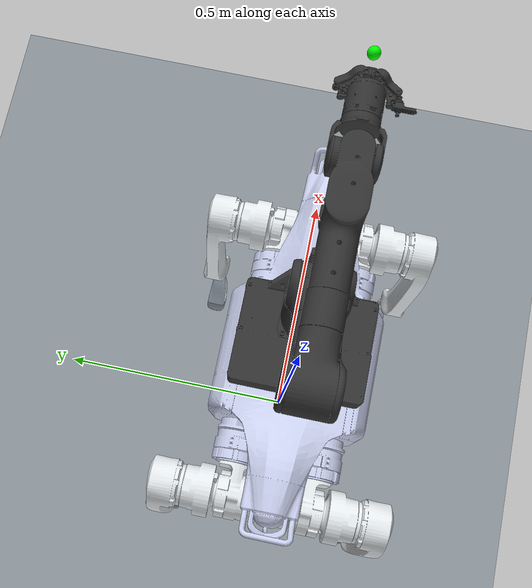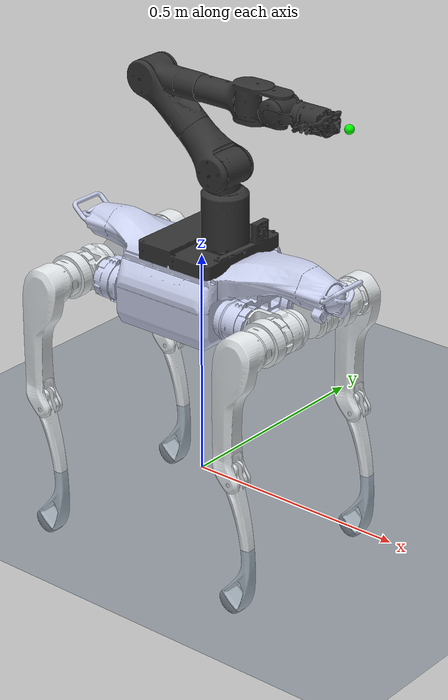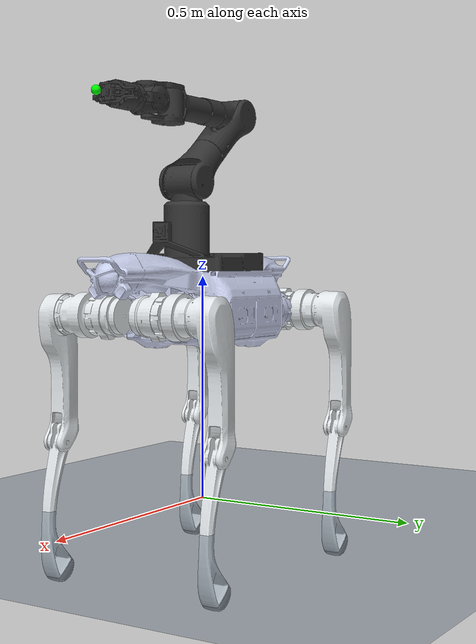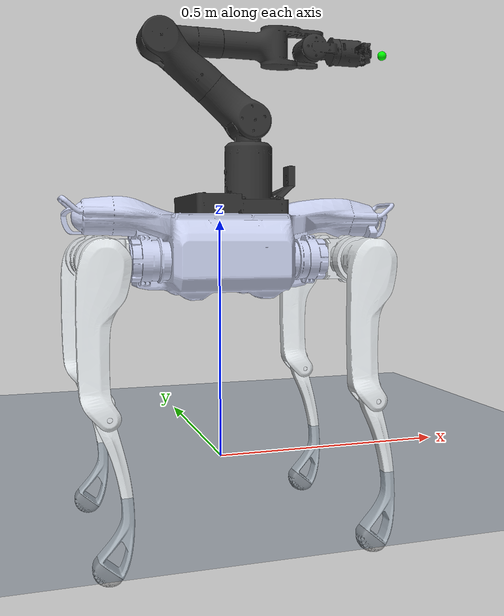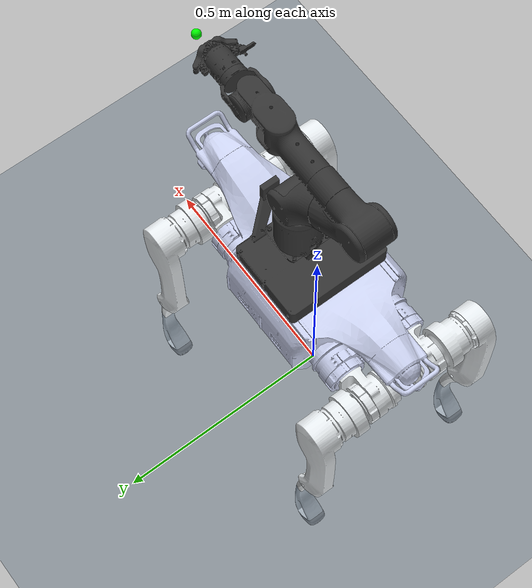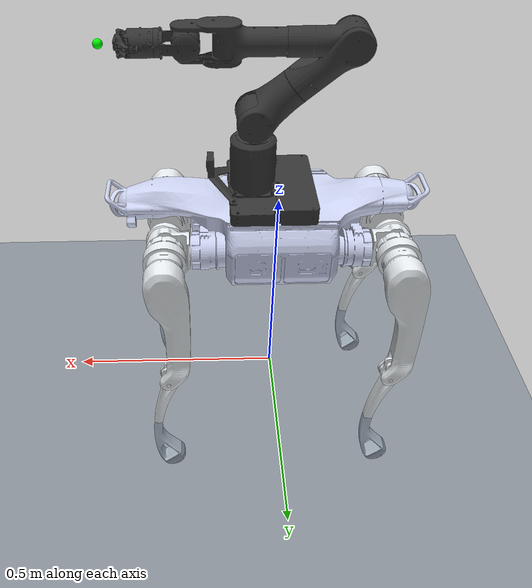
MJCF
<mujoco model="a2arm_v2 pos_force scene">
  <include file="a2arm_v2.xml"/>

  <statistic center="0 0 0.1" extent="0.9" meansize="0.05"/>

  <visual>
    <headlight diffuse="0.6 0.6 0.6" ambient="0.3 0.3 0.3" specular="0 0 0"/>
    <rgba haze="0.15 0.25 0.35 1"/>
    <global azimuth="-130" elevation="-20"/>
  </visual>

  <asset>
    <texture type="skybox" builtin="gradient" rgb1="0.3 0.5 0.7" rgb2="0 0 0" width="512" height="3072"/>
    <texture type="2d" name="groundplane" builtin="checker" mark="edge" rgb1="0.2 0.3 0.4" rgb2="0.1 0.2 0.3"
      markrgb="0.8 0.8 0.8" width="300" height="300"/>
    <material name="groundplane" texture="groundplane" texuniform="true" texrepeat="5 5" reflectance="0.2"/>
  </asset>

  <worldbody>
    <light pos="0 0 1.5" dir="0 0 -1" directional="true"/>
    <geom name="floor" size="0 0 0.05" type="plane" material="groundplane"/>
  </worldbody>

  <sensor>
    <contact name="FL_foot_contact" geom1="floor" geom2="FL" data="found" num="1" reduce="mindist"/>
    <contact name="FR_foot_contact" geom1="floor" geom2="FR" data="found" num="1" reduce="mindist"/>
    <contact name="RL_foot_contact" geom1="floor" geom2="RL" data="found" num="1" reduce="mindist"/>
    <contact name="RR_foot_contact" geom1="floor" geom2="RR" data="found" num="1" reduce="mindist"/>

    <!-- Foot contact force vectors (UniFP feet_contact_forces / feet_drag rewards). -->
    <contact name="FL_foot_force" geom1="floor" geom2="FL" data="force" num="1" reduce="mindist"/>
    <contact name="FR_foot_force" geom1="floor" geom2="FR" data="force" num="1" reduce="mindist"/>
    <contact name="RL_foot_force" geom1="floor" geom2="RL" data="force" num="1" reduce="mindist"/>
    <contact name="RR_foot_force" geom1="floor" geom2="RR" data="force" num="1" reduce="mindist"/>

    <contact name="base1_contact" geom1="floor" geom2="base1" data="found" num="1" reduce="mindist"/>
    <contact name="base2_contact" geom1="floor" geom2="base2" data="found" num="1" reduce="mindist"/>
    <contact name="base3_contact" geom1="floor" geom2="base3" data="found" num="1" reduce="mindist"/>

    <contact name="FL_thigh_contact" geom1="floor" geom2="fl_thigh_0" data="found" num="1" reduce="mindist"/>
    <contact name="FR_thigh_contact" geom1="floor" geom2="fr_thigh_0" data="found" num="1" reduce="mindist"/>
    <contact name="RL_thigh_contact" geom1="floor" geom2="rl_thigh_0" data="found" num="1" reduce="mindist"/>
    <contact name="RR_thigh_contact" geom1="floor" geom2="rr_thigh_0" data="found" num="1" reduce="mindist"/>

    <contact name="FL_calf_contact1" geom1="floor" geom2="fl_calf_0" data="found" num="1" reduce="mindist"/>
    <contact name="FR_calf_contact1" geom1="floor" geom2="fr_calf_0" data="found" num="1" reduce="mindist"/>
    <contact name="RL_calf_contact1" geom1="floor" geom2="rl_calf_0" data="found" num="1" reduce="mindist"/>
    <contact name="RR_calf_contact1" geom1="floor" geom2="rr_calf_0" data="found" num="1" reduce="mindist"/>

    <contact name="FL_calf_contact2" geom1="floor" geom2="fl_calf_1" data="found" num="1" reduce="mindist"/>
    <contact name="FR_calf_contact2" geom1="floor" geom2="fr_calf_1" data="found" num="1" reduce="mindist"/>
    <contact name="RL_calf_contact2" geom1="floor" geom2="rl_calf_1" data="found" num="1" reduce="mindist"/>
    <contact name="RR_calf_contact2" geom1="floor" geom2="rr_calf_1" data="found" num="1" reduce="mindist"/>
  </sensor>

  <keyframe>
    <key name="home"
      qpos="0 0 0.465 1 0 0 0  -0.1 0.75 -1.5  0.1 0.75 -1.5  -0.1 1.0 -1.5  0.1 1.0 -1.5  0 -0.340 0 -0.622 0 0"
      ctrl="0 0 0 0 0 0 0 0 0 0 0 0 0 0 0 0 0 0"/>
  </keyframe>
</mujoco>

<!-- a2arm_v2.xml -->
<mujoco model="a2arm_v2">
  <compiler angle="radian" meshdir="meshes" autolimits="true"/>
  <option gravity="0 0 -9.81"/>

  <default>
    <default class="hip_joint">
      <joint damping="0.2" armature="0.03" frictionloss="1.0"/>
    </default>
    <default class="thigh_joint">
      <joint damping="0.2" armature="0.03" frictionloss="1.0"/>
    </default>
    <default class="calf_joint">
      <joint damping="1.0" armature="0.03" frictionloss="3.0"/>
    </default>
    <default class="collision">
      <geom group="3" priority="1" condim="6"/>
    </default>
    <default class="foot">
      <geom group="3" priority="1" condim="6"/>
    </default>
    <default class="obj_visual">
      <geom group="2" type="mesh" contype="0" conaffinity="0"/>
    </default>
    <default class="obj_collision">
      <geom group="3" contype="1" conaffinity="1"/>
    </default>
    <!-- P7v3 arm joints: light damping, modest armature (6-DOF articulated). -->
    <default class="p7_arm">
      <joint axis="0 0 1" armature="0.01" damping="0.5" frictionloss="1"/>
    </default>
  </default>

  <asset>
    <material name="metal" rgba=".9 .95 .95 1"/>
    <material name="black" rgba="0 0 0 1"/>
    <material name="white" rgba="1 1 1 1"/>
    <material name="gray" rgba="0.671705 0.692426 0.774270 1"/>
    <material name="Paint_Matte_Black" specular="0.5" shininess="0.5" rgba="0.00111266 0.00111266 0.00111266 1.0"/>
    <material name="dark_gray" rgba="0.2 0.2 0.2 1"/>
    <material name="light_gray" rgba="0.6 0.6 0.6 1"/>

    <!-- A2 leg meshes (same STL files as a2_arm, flat under meshes/). -->
    <mesh name="base_link" file="base_link.STL"/>
    <mesh name="left_front_Link1" file="left_front_Link1.STL"/>
    <mesh name="left_front_Link2" file="left_front_Link2.STL"/>
    <mesh name="left_front_Link3" file="left_front_Link3.STL"/>
    <mesh name="left_front_Link4" file="left_front_Link4.STL"/>
    <mesh name="left_hind_Link1" file="left_hind_Link1.STL"/>
    <mesh name="left_hind_Link2" file="left_hind_Link2.STL"/>
    <mesh name="left_hind_Link3" file="left_hind_Link3.STL"/>
    <mesh name="left_hind_Link4" file="left_hind_Link4.STL"/>
    <mesh name="right_front_Link1" file="right_front_Link1.STL"/>
    <mesh name="right_front_Link2" file="right_front_Link2.STL"/>
    <mesh name="right_front_Link3" file="right_front_Link3.STL"/>
    <mesh name="right_front_Link4" file="right_front_Link4.STL"/>
    <mesh name="right_hind_Link1" file="right_hind_Link1.STL"/>
    <mesh name="right_hind_Link2" file="right_hind_Link2.STL"/>
    <mesh name="right_hind_Link3" file="right_hind_Link3.STL"/>
    <mesh name="right_hind_Link4" file="right_hind_Link4.STL"/>

    <!-- P7v3 arm meshes. -->
    <mesh name="arm_base" file="p7_v3/base_link.STL"/>
    <mesh name="link1" file="p7_v3/link1.STL"/>
    <mesh name="link2" file="p7_v3/link2.STL"/>
    <mesh name="link3" file="p7_v3/link3.STL"/>
    <mesh name="link4" file="p7_v3/link4.STL"/>
    <mesh name="link5" file="p7_v3/link5.STL"/>
    <mesh name="link6" file="p7_v3/link6.STL"/>
    <mesh name="link7" file="p7_v3/link7.STL"/>
    <mesh name="adapter_plate" file="adapter_plate.STL"/>

    <!-- UMI gripper v3 meshes (welded, no joints). -->
    <mesh name="umi_base" file="umi_gripper_v3/base_link.STL"/>
    <mesh name="umi_claw" file="umi_gripper_v3/claw.STL"/>
    <mesh name="umi_l11" file="umi_gripper_v3/L11.STL"/>
    <mesh name="umi_l12" file="umi_gripper_v3/L12.STL"/>
    <mesh name="umi_l21" file="umi_gripper_v3/L21.STL"/>
    <mesh name="umi_l22" file="umi_gripper_v3/L22.STL"/>
    <mesh name="umi_l23" file="umi_gripper_v3/L23.STL"/>
    <mesh name="umi_l31" file="umi_gripper_v3/L31.STL"/>
    <mesh name="umi_l32" file="umi_gripper_v3/L32.STL"/>
    <mesh name="umi_l41" file="umi_gripper_v3/L41.STL"/>
    <mesh name="umi_l42" file="umi_gripper_v3/L42.STL"/>
    <mesh name="umi_l51" file="umi_gripper_v3/L51.STL"/>
    <mesh name="umi_l52" file="umi_gripper_v3/L52.STL"/>
    <mesh name="umi_l53" file="umi_gripper_v3/L53.STL"/>
    <mesh name="umi_l61" file="umi_gripper_v3/L61.STL"/>
    <mesh name="umi_l62" file="umi_gripper_v3/L62.STL"/>
  </asset>

  <worldbody>
    <body name="base_link" pos="0 0 0.42">
      <inertial pos="0.00698259 -0.000712858 0.0128895" quat="-0.00152907 0.699583 -0.00252986 0.714546" mass="19.651" diaginertia="0.472398 0.407723 0.141627"/>
      <joint name="floating_base_joint" type="free" limited="false" actuatorfrclimited="false"/>
      <site name="imu" pos="-0.0 0 0.0"/>
      <geom type="mesh" contype="0" conaffinity="0" group="1" density="0" rgba="0.792157 0.819608 0.933333 1" mesh="base_link"/>
      <geom name="base1" class="collision" size="0.12 0.14 0.085" pos="0 0 0.007" type="box" rgba="0.792157 0.819608 0.933333 1"/>
      <geom name="base2" class="collision" size="0.04 0.025 0.01" pos="0.25 0 0.119" type="box" rgba="0.792157 0.819608 0.933333 1"/>
      <geom name="base3" class="collision" size="0.025 0.015 0.008" pos="-0.22 0 0.119" quat="0.999888 0 -0.0149994 0" type="box" rgba="0.792157 0.819608 0.933333 1"/>
      <geom class="collision" size="0.03 0.05 0.005" pos="0.365 0 0.1" quat="0.939373 0 -0.342898 0" type="box" rgba="0.792157 0.819608 0.933333 1"/>
      <geom class="collision" size="0.0225 0.05 0.005" pos="-0.31 0 0.112" quat="0.939373 0 0.342898 0" type="box" rgba="0.792157 0.819608 0.933333 1"/>

      <!-- ===== FL leg ===== -->
      <body name="FL_hip" pos="0.25944 0.075113 0">
        <inertial pos="-0.002408 -0.01622 0.000239" quat="0.66751 0.421649 0.565191 0.239168" mass="1.62" diaginertia="0.0016644 0.00161602 0.00145995"/>
        <joint name="FL_hip_joint" pos="0 0 0" axis="1 0 0" range="-1.01 1.01" actuatorfrcrange="-120 120" class="hip_joint"/>
        <geom type="mesh" contype="0" conaffinity="0" group="1" density="0" rgba="0.898039 0.917647 0.929412 1" mesh="left_front_Link1"/>
        <body name="FL_thigh" pos="0 0.12779 0">
          <inertial pos="-0.003268 -0.03111 -0.053896" quat="0.993045 0.11348 0.0231928 0.0211279" mass="3.079" diaginertia="0.0293395 0.0280448 0.00383794"/>
          <joint name="FL_thigh_joint" pos="0 0 0" axis="0 1 0" range="-2.34 3.15" actuatorfrcrange="-120 120" class="thigh_joint"/>
          <geom type="mesh" contype="0" conaffinity="0" group="1" density="0" rgba="0.898039 0.917647 0.929412 1" mesh="left_front_Link2"/>
          <geom class="collision" size="0.048 0.06" pos="0 -0.04 0" quat="0.707035 0.707179 0 0" type="cylinder" rgba="0.898039 0.917647 0.929412 1"/>
          <geom name="fl_thigh_0" class="collision" size="0.0275 0.018 0.085" pos="-0.025 0 -0.09" quat="0.999988 0 0.00499998 0" type="box" rgba="0.898039 0.917647 0.929412 1"/>
          <geom class="collision" size="0.0085 0.025 0.025" pos="-0.022 0 -0.27" quat="0.930508 0 -0.366273 0" type="box" rgba="0.898039 0.917647 0.929412 1"/>
          <body name="FL_calf" pos="0 0 -0.275">
            <inertial pos="0.0102138 -1.99312e-05 -0.136496" quat="0.706884 -0.0119077 -0.0120568 0.707127" mass="0.407" diaginertia="0.00511119 0.00502314 0.000177746"/>
            <joint name="FL_calf_joint" pos="0 0 0" axis="0 1 0" range="-2.77 -0.54" actuatorfrcrange="-180 180" class="calf_joint"/>
            <geom type="mesh" contype="0" conaffinity="0" group="1" density="0" rgba="0.898039 0.917647 0.929412 1" mesh="left_front_Link3"/>
            <geom name="fl_calf_0" class="collision" size="0.012 0.015 0.05" pos="0.018 0 -0.08" quat="0.992809 0 -0.119712 0" type="box" rgba="0.898039 0.917647 0.929412 1"/>
            <geom name="fl_calf_1" class="collision" size="0.011 0.015 0.04" pos="0.033 0 -0.17" quat="0.999888 0 -0.0149994 0" type="box" rgba="0.898039 0.917647 0.929412 1"/>
            <geom class="collision" size="0.01 0.018 0.03" pos="0.029 0 -0.236" quat="0.995004 0 0.0998334 0" type="box" rgba="0.898039 0.917647 0.929412 1"/>
            <geom class="collision" size="0.005 0.018 0.03" pos="0.008 0 -0.23" quat="0.942755 0 0.333487 0" type="box" rgba="0.898039 0.917647 0.929412 1"/>
            <geom pos="0 0 -0.275" quat="1 0 0 0" type="mesh" contype="0" conaffinity="0" group="1" density="0" rgba="0.698039 0.698039 0.698039 1" mesh="left_front_Link4"/>
            <geom name="FL" size="0.032" pos="0 0 -0.275" rgba="0.698039 0.698039 0.698039 1" class="foot"/>
            <site name="FL" pos="0 0 -0.275" size="0.02" rgba="0 1 0 1" group="3"/>
          </body>
        </body>
      </body>

      <!-- ===== FR leg ===== -->
      <body name="FR_hip" pos="0.25944 -0.075113 0">
        <inertial pos="-0.002465 0.01622 0.000318" quat="0.244263 0.553086 0.449878 0.657299" mass="1.62" diaginertia="0.0016672 0.00160755 0.00146457"/>
        <joint name="FR_hip_joint" pos="0 0 0" axis="1 0 0" range="-1.01 1.01" actuatorfrcrange="-120 120" class="hip_joint"/>
        <geom type="mesh" contype="0" conaffinity="0" group="1" density="0" rgba="0.898039 0.917647 0.929412 1" mesh="right_front_Link1"/>
        <body name="FR_thigh" pos="0 -0.12779 0">
          <inertial pos="-0.003256 0.031125 -0.053921" quat="0.993054 -0.113587 0.0234158 -0.0198545" mass="3.077" diaginertia="0.029323 0.028038 0.00383842"/>
          <joint name="FR_thigh_joint" pos="0 0 0" axis="0 1 0" range="-2.34 3.15" actuatorfrcrange="-120 120" class="thigh_joint"/>
          <geom type="mesh" contype="0" conaffinity="0" group="1" density="0" rgba="0.898039 0.917647 0.929412 1" mesh="right_front_Link2"/>
          <geom class="collision" size="0.048 0.06" pos="0 0.04 0" quat="0.707035 0.707179 0 0" type="cylinder" rgba="0.898039 0.917647 0.929412 1"/>
          <geom name="fr_thigh_0" class="collision" size="0.0275 0.018 0.085" pos="-0.025 0 -0.09" quat="0.999988 0 0.00499998 0" type="box" rgba="0.898039 0.917647 0.929412 1"/>
          <geom class="collision" size="0.0085 0.025 0.025" pos="-0.022 0 -0.27" quat="0.930508 0 -0.366273 0" type="box" rgba="0.898039 0.917647 0.929412 1"/>
          <body name="FR_calf" pos="0 0 -0.275">
            <inertial pos="0.0102138 1.55479e-05 -0.136496" quat="0.707151 -0.0120743 -0.0118903 0.706859" mass="0.407" diaginertia="0.00511119 0.00502314 0.000177746"/>
            <joint name="FR_calf_joint" pos="0 0 0" axis="0 1 0" range="-2.77 -0.54" actuatorfrcrange="-180 180" class="calf_joint"/>
            <geom type="mesh" contype="0" conaffinity="0" group="1" density="0" rgba="0.898039 0.917647 0.929412 1" mesh="right_front_Link3"/>
            <geom name="fr_calf_0" class="collision" size="0.012 0.015 0.05" pos="0.018 0 -0.08" quat="0.992809 0 -0.119712 0" type="box" rgba="0.898039 0.917647 0.929412 1"/>
            <geom name="fr_calf_1" class="collision" size="0.011 0.015 0.04" pos="0.033 0 -0.17" quat="0.999888 0 -0.0149994 0" type="box" rgba="0.898039 0.917647 0.929412 1"/>
            <geom class="collision" size="0.01 0.018 0.03" pos="0.029 0 -0.236" quat="0.995004 0 0.0998334 0" type="box" rgba="0.898039 0.917647 0.929412 1"/>
            <geom class="collision" size="0.005 0.018 0.03" pos="0.008 0 -0.23" quat="0.942755 0 0.333487 0" type="box" rgba="0.898039 0.917647 0.929412 1"/>
            <geom pos="0 0 -0.275" quat="1 0 0 0" type="mesh" contype="0" conaffinity="0" group="1" density="0" rgba="0.698039 0.698039 0.698039 1" mesh="right_front_Link4"/>
            <geom name="FR" size="0.032" pos="0 0 -0.275" rgba="0.698039 0.698039 0.698039 1" class="foot"/>
            <site name="FR" pos="0 0 -0.275" size="0.02" rgba="0 1 0 1" group="3"/>
          </body>
        </body>
      </body>

      <!-- ===== RL leg ===== -->
      <body name="RL_hip" pos="-0.25944 0.075113 0">
        <inertial pos="0.00327 -0.01622 -9.7e-05" quat="0.358494 0.383537 0.580824 0.622113" mass="1.62" diaginertia="0.00167848 0.00163116 0.00141504"/>
        <joint name="RL_hip_joint" pos="0 0 0" axis="1 0 0" range="-1.01 1.01" actuatorfrcrange="-120 120" class="hip_joint"/>
        <geom type="mesh" contype="0" conaffinity="0" group="1" density="0" rgba="0.898039 0.917647 0.929412 1" mesh="left_hind_Link1"/>
        <body name="RL_thigh" pos="0 0.12779 0">
          <inertial pos="-0.003268 -0.03111 -0.053896" quat="0.993045 0.11348 0.0231928 0.0211279" mass="3.079" diaginertia="0.0293395 0.0280448 0.00383794"/>
          <joint name="RL_thigh_joint" pos="0 0 0" axis="0 1 0" range="-1.56 3.94" actuatorfrcrange="-120 120" class="thigh_joint"/>
          <geom type="mesh" contype="0" conaffinity="0" group="1" density="0" rgba="0.898039 0.917647 0.929412 1" mesh="left_hind_Link2"/>
          <geom class="collision" size="0.048 0.06" pos="0 -0.04 0" quat="0.707035 0.707179 0 0" type="cylinder" rgba="0.898039 0.917647 0.929412 1"/>
          <geom name="rl_thigh_0" class="collision" size="0.0275 0.018 0.085" pos="-0.025 0 -0.09" quat="0.999988 0 0.00499998 0" type="box" rgba="0.898039 0.917647 0.929412 1"/>
          <geom class="collision" size="0.0085 0.025 0.025" pos="-0.022 0 -0.27" quat="0.930508 0 -0.366273 0" type="box" rgba="0.898039 0.917647 0.929412 1"/>
          <body name="RL_calf" pos="0 0 -0.275">
            <inertial pos="0.0102138 -1.99312e-05 -0.136496" quat="0.706884 -0.0119077 -0.0120568 0.707127" mass="0.407" diaginertia="0.00511119 0.00502314 0.000177746"/>
            <joint name="RL_calf_joint" pos="0 0 0" axis="0 1 0" range="-2.77 -0.54" actuatorfrcrange="-180 180" class="calf_joint"/>
            <geom type="mesh" contype="0" conaffinity="0" group="1" density="0" rgba="0.898039 0.917647 0.929412 1" mesh="left_hind_Link3"/>
            <geom name="rl_calf_0" class="collision" size="0.012 0.015 0.05" pos="0.018 0 -0.08" quat="0.992809 0 -0.119712 0" type="box" rgba="0.898039 0.917647 0.929412 1"/>
            <geom name="rl_calf_1" class="collision" size="0.011 0.015 0.04" pos="0.033 0 -0.17" quat="0.999888 0 -0.0149994 0" type="box" rgba="0.898039 0.917647 0.929412 1"/>
            <geom class="collision" size="0.01 0.018 0.03" pos="0.029 0 -0.236" quat="0.995004 0 0.0998334 0" type="box" rgba="0.898039 0.917647 0.929412 1"/>
            <geom class="collision" size="0.005 0.018 0.03" pos="0.008 0 -0.23" quat="0.942755 0 0.333487 0" type="box" rgba="0.898039 0.917647 0.929412 1"/>
            <geom pos="0 0 -0.275" quat="1 0 0 0" type="mesh" contype="0" conaffinity="0" group="1" density="0" rgba="0.698039 0.698039 0.698039 1" mesh="left_hind_Link4"/>
            <geom name="RL" size="0.032" pos="0 0 -0.275" rgba="0.698039 0.698039 0.698039 1" class="foot"/>
            <site name="RL" pos="0 0 -0.275" size="0.02" rgba="0 1 0 1" group="3"/>
          </body>
        </body>
      </body>

      <!-- ===== RR leg ===== -->
      <body name="RR_hip" pos="-0.25944 -0.075113 0">
        <inertial pos="0.00327 0.01622 -3.7e-05" quat="0.616206 0.585144 0.36648 0.378931" mass="1.62" diaginertia="0.00167769 0.00163476 0.00141225"/>
        <joint name="RR_hip_joint" pos="0 0 0" axis="1 0 0" range="-1.01 1.01" actuatorfrcrange="-120 120" class="hip_joint"/>
        <geom type="mesh" contype="0" conaffinity="0" group="1" density="0" rgba="0.898039 0.917647 0.929412 1" mesh="right_hind_Link1"/>
        <body name="RR_thigh" pos="0 -0.12779 0">
          <inertial pos="-0.003256 0.031125 -0.053921" quat="0.993054 -0.113587 0.0234158 -0.0198545" mass="3.077" diaginertia="0.029323 0.028038 0.00383842"/>
          <joint name="RR_thigh_joint" pos="0 0 0" axis="0 1 0" range="-1.56 3.94" actuatorfrcrange="-120 120" class="thigh_joint"/>
          <geom type="mesh" contype="0" conaffinity="0" group="1" density="0" rgba="0.898039 0.917647 0.929412 1" mesh="right_hind_Link2"/>
          <geom class="collision" size="0.048 0.06" pos="0 0.04 0" quat="0.707035 0.707179 0 0" type="cylinder" rgba="0.898039 0.917647 0.929412 1"/>
          <geom name="rr_thigh_0" class="collision" size="0.0275 0.018 0.085" pos="-0.025 0 -0.09" quat="0.999988 0 0.00499998 0" type="box" rgba="0.898039 0.917647 0.929412 1"/>
          <geom class="collision" size="0.0085 0.025 0.025" pos="-0.022 0 -0.27" quat="0.930508 0 -0.366273 0" type="box" rgba="0.898039 0.917647 0.929412 1"/>
          <body name="RR_calf" pos="0 0 -0.275">
            <inertial pos="0.0102138 1.55479e-05 -0.136496" quat="0.707151 -0.0120743 -0.0118903 0.706859" mass="0.407" diaginertia="0.00511119 0.00502314 0.000177746"/>
            <joint name="RR_calf_joint" pos="0 0 0" axis="0 1 0" range="-2.77 -0.54" actuatorfrcrange="-180 180" class="calf_joint"/>
            <geom type="mesh" contype="0" conaffinity="0" group="1" density="0" rgba="0.898039 0.917647 0.929412 1" mesh="right_hind_Link3"/>
            <geom name="rr_calf_0" class="collision" size="0.012 0.015 0.05" pos="0.018 0 -0.08" quat="0.992809 0 -0.119712 0" type="box" rgba="0.898039 0.917647 0.929412 1"/>
            <geom name="rr_calf_1" class="collision" size="0.011 0.015 0.04" pos="0.033 0 -0.17" quat="0.999888 0 -0.0149994 0" type="box" rgba="0.898039 0.917647 0.929412 1"/>
            <geom class="collision" size="0.01 0.018 0.03" pos="0.029 0 -0.236" quat="0.995004 0 0.0998334 0" type="box" rgba="0.898039 0.917647 0.929412 1"/>
            <geom class="collision" size="0.005 0.018 0.03" pos="0.008 0 -0.23" quat="0.942755 0 0.333487 0" type="box" rgba="0.898039 0.917647 0.929412 1"/>
            <geom pos="0 0 -0.275" quat="1 0 0 0" type="mesh" contype="0" conaffinity="0" group="1" density="0" rgba="0.698039 0.698039 0.698039 1" mesh="right_hind_Link4"/>
            <geom name="RR" size="0.032" pos="0 0 -0.275" rgba="0.698039 0.698039 0.698039 1" class="foot"/>
            <site name="RR" pos="0 0 -0.275" size="0.02" rgba="0 1 0 1" group="3"/>
          </body>
        </body>
      </body>

      <!-- ===== P7v3 arm (joint1-6 actuated; joint7/UMI welded) ===== -->
      <body name="arm_base_link" pos="0.0625 0 0.1209" childclass="p7_arm">
        <inertial pos="0 0 0.08" mass="0.5" diaginertia="0.001 0.001 0.001"/>
        <site name="armbasepoint" pos="0 0 0" euler="0 0 0" size="0.01" type="sphere" rgba="1 0 0 1"/>
        <geom type="mesh" mesh="adapter_plate" class="obj_visual" material="dark_gray"/>
        <geom type="mesh" mesh="arm_base" class="obj_visual" material="dark_gray"/>
        <body name="link1" pos="0 0 0.16452">
          <inertial pos="0 0 0.05" mass="0.8" diaginertia="0.002 0.002 0.001"/>
          <joint name="joint1" axis="0 0 1" range="-2.967 2.967" actuatorfrcrange="-30 30"/>
          <geom type="mesh" mesh="link1" class="obj_visual" material="dark_gray"/>
          <body name="link2" quat="-0.298838 -0.298832 -0.640859 0.640855">
            <inertial pos="0 -0.12 0" mass="1.2" diaginertia="0.003 0.003 0.001"/>
            <joint name="joint2" axis="0 0 1" range="-2.583 0.838" actuatorfrcrange="-30 30"/>
            <geom type="mesh" mesh="link2" class="obj_visual" material="dark_gray"/>
            <body name="link3" pos="0 -0.249 0" quat="0.707105 0.707108 0 0">
              <inertial pos="0 0 0" mass="0.6" diaginertia="0.001 0.001 0.001"/>
              <joint name="joint3" axis="0 0 1" range="-2.967 2.967" actuatorfrcrange="-30 30"/>
              <geom type="mesh" mesh="link3" class="obj_visual" material="dark_gray"/>
              <body name="link4" quat="0.664462 0.664464 0.241844 -0.241845">
                <inertial pos="0 -0.16 0" mass="1.0" diaginertia="0.002 0.002 0.001"/>
                <joint name="joint4" axis="0 0 1" range="-2.443 0.175" actuatorfrcrange="-30 30"/>
                <geom type="mesh" mesh="link4" class="obj_visual" material="dark_gray"/>
                <body name="link5" pos="0 -0.329 0" quat="0.499998 0.5 0.5 -0.500002">
                  <inertial pos="0 0 0" mass="0.4" diaginertia="0.001 0.001 0.0005"/>
                  <joint name="joint5" axis="0 0 1" range="-2.967 2.967" actuatorfrcrange="-10 10"/>
                  <geom type="mesh" mesh="link5" class="obj_visual" material="dark_gray"/>
                  <body name="link6" quat="0.500073 0.500075 -0.499925 0.499927">
                    <inertial pos="0 0 0" mass="0.3" diaginertia="0.0005 0.0005 0.0003"/>
                    <joint name="joint6" axis="0 0 1" range="-0.785 0.785" actuatorfrcrange="-10 10"/>
                    <geom type="mesh" mesh="link6" class="obj_visual" material="dark_gray"/>
                    <!-- joint7 welded (fixed at 0): link7 is a rigid child of link6. -->
                    <body name="link7" quat="-2.59734e-06 2.59735e-06 -0.707108 0.707105">
                      <inertial pos="-0.03 0 0" mass="0.2" diaginertia="0.0003 0.0003 0.0002"/>
                      <geom type="mesh" mesh="link7" class="obj_visual" material="dark_gray"/>
                      <body name="tool" pos="-0.062 0 0" quat="-2.59734e-06 2.59735e-06 -0.707108 0.707105">
                        <inertial pos="0.05 0 0" mass="0.15" diaginertia="0.0002 0.0002 0.0001"/>
                        <!-- TCP: end_link carries the endpoint site (EE goal frame). -->
                        <body name="end_link" pos="0.10867 0 0">
                          <inertial pos="0 0 0" mass="0.001" diaginertia="1e-6 1e-6 1e-6"/>
                          <site name="endpoint" pos="0 0 0" euler="0 0 0" size="0.01" type="sphere" rgba="0 1 0 1"/>
                        </body>
                        <!-- UMI gripper v3 (welded, no joints; mass modeled for payload). -->
                        <body name="umi_base_link">
                          <inertial pos="0.03 0 0" mass="0.3" diaginertia="0.0005 0.0005 0.0003"/>
                          <geom type="mesh" mesh="umi_base" class="obj_visual" material="dark_gray"/>
                          <body name="umi_claw" pos="0.051 0 -6.849e-05" quat="0.499998 0.5 0.500002 0.5">
                            <inertial pos="0.02 0 0" mass="0.05" diaginertia="0.0001 0.0001 0.00005"/>
                            <geom type="mesh" mesh="umi_claw" class="obj_visual" material="dark_gray"/>
                            <body name="umi_l11" pos="-0.035 0 -0.014">
                              <geom type="mesh" mesh="umi_l11" class="obj_visual" material="dark_gray"/>
                              <body name="umi_l12" pos="-0.014 -0.007 0">
                                <geom type="mesh" mesh="umi_l12" class="obj_visual" material="dark_gray"/>
                              </body>
                            </body>
                            <body name="umi_l61" pos="0.035 0 -0.014">
                              <geom type="mesh" mesh="umi_l61" class="obj_visual" material="dark_gray"/>
                              <body name="umi_l62" pos="-0.014 0.007 0">
                                <geom type="mesh" mesh="umi_l62" class="obj_visual" material="dark_gray"/>
                              </body>
                            </body>
                          </body>
                          <body name="umi_l21" pos="0.0565 -0.017 0">
                            <geom type="mesh" mesh="umi_l21" class="obj_visual" material="dark_gray"/>
                            <body name="umi_l22" pos="0.013 0.027 0">
                              <geom type="mesh" mesh="umi_l22" class="obj_visual" material="dark_gray"/>
                              <body name="umi_l23" pos="-0.025 0.024 0">
                                <geom type="mesh" mesh="umi_l23" class="obj_visual" material="dark_gray"/>
                              </body>
                            </body>
                          </body>
                          <body name="umi_l31" pos="0.0615 -0.007 0">
                            <geom type="mesh" mesh="umi_l31" class="obj_visual" material="dark_gray"/>
                            <body name="umi_l32" pos="-0.012 0.051 0">
                              <geom type="mesh" mesh="umi_l32" class="obj_visual" material="dark_gray"/>
                            </body>
                          </body>
                          <body name="umi_l41" pos="0.0615 0.007 0">
                            <geom type="mesh" mesh="umi_l41" class="obj_visual" material="dark_gray"/>
                            <body name="umi_l42" pos="-0.012 -0.051 0">
                              <geom type="mesh" mesh="umi_l42" class="obj_visual" material="dark_gray"/>
                            </body>
                          </body>
                          <body name="umi_l51" pos="0.0565 0.017 0">
                            <geom type="mesh" mesh="umi_l51" class="obj_visual" material="dark_gray"/>
                            <body name="umi_l52" pos="0.013 -0.027 0">
                              <geom type="mesh" mesh="umi_l52" class="obj_visual" material="dark_gray"/>
                              <body name="umi_l53" pos="-0.025 -0.024 0">
                                <geom type="mesh" mesh="umi_l53" class="obj_visual" material="dark_gray"/>
                              </body>
                            </body>
                          </body>
                        </body>
                      </body>
                    </body>
                  </body>
                </body>
              </body>
            </body>
          </body>
        </body>
      </body>
    </body>
  </worldbody>

  <contact>
    <!-- P7v3 arm adjacent-link excludes. -->
    <exclude body1="arm_base_link" body2="link1"/>
    <exclude body1="link1" body2="link2"/>
    <exclude body1="link2" body2="link3"/>
    <exclude body1="link3" body2="link4"/>
    <exclude body1="link4" body2="link5"/>
    <exclude body1="link5" body2="link6"/>
    <exclude body1="link6" body2="link7"/>
    <exclude body1="link7" body2="tool"/>
    <exclude body1="tool" body2="end_link"/>
    <exclude body1="tool" body2="umi_base_link"/>
    <!-- Arm vs. near legs. -->
    <exclude body1="arm_base_link" body2="FL_hip"/>
    <exclude body1="arm_base_link" body2="FR_hip"/>
    <exclude body1="arm_base_link" body2="RL_hip"/>
    <exclude body1="arm_base_link" body2="RR_hip"/>
    <exclude body1="link1" body2="FL_hip"/>
    <exclude body1="link1" body2="FR_hip"/>
    <exclude body1="link1" body2="RL_hip"/>
    <exclude body1="link1" body2="RR_hip"/>
    <!-- UMI internal (welded linkage self-collision). -->
    <exclude body1="umi_base_link" body2="umi_claw"/>
    <exclude body1="umi_claw" body2="umi_l11"/>
    <exclude body1="umi_claw" body2="umi_l61"/>
    <exclude body1="umi_claw" body2="umi_l21"/>
    <exclude body1="umi_claw" body2="umi_l31"/>
    <exclude body1="umi_claw" body2="umi_l41"/>
    <exclude body1="umi_claw" body2="umi_l51"/>
    <exclude body1="umi_base_link" body2="umi_l21"/>
    <exclude body1="umi_base_link" body2="umi_l31"/>
    <exclude body1="umi_base_link" body2="umi_l41"/>
    <exclude body1="umi_base_link" body2="umi_l51"/>
    <exclude body1="umi_l11" body2="umi_l12"/>
    <exclude body1="umi_l61" body2="umi_l62"/>
    <exclude body1="umi_l21" body2="umi_l22"/>
    <exclude body1="umi_l22" body2="umi_l23"/>
    <exclude body1="umi_l31" body2="umi_l32"/>
    <exclude body1="umi_l41" body2="umi_l42"/>
    <exclude body1="umi_l51" body2="umi_l52"/>
    <exclude body1="umi_l52" body2="umi_l53"/>
  </contact>

  <actuator>
    <motor ctrlrange="-120 120" name="FL_hip" joint="FL_hip_joint"/>
    <motor ctrlrange="-120 120" name="FL_thigh" joint="FL_thigh_joint"/>
    <motor ctrlrange="-180 180" name="FL_calf" joint="FL_calf_joint"/>
    <motor ctrlrange="-120 120" name="FR_hip" joint="FR_hip_joint"/>
    <motor ctrlrange="-120 120" name="FR_thigh" joint="FR_thigh_joint"/>
    <motor ctrlrange="-180 180" name="FR_calf" joint="FR_calf_joint"/>
    <motor ctrlrange="-120 120" name="RL_hip" joint="RL_hip_joint"/>
    <motor ctrlrange="-120 120" name="RL_thigh" joint="RL_thigh_joint"/>
    <motor ctrlrange="-180 180" name="RL_calf" joint="RL_calf_joint"/>
    <motor ctrlrange="-120 120" name="RR_hip" joint="RR_hip_joint"/>
    <motor ctrlrange="-120 120" name="RR_thigh" joint="RR_thigh_joint"/>
    <motor ctrlrange="-180 180" name="RR_calf" joint="RR_calf_joint"/>
    <!-- P7v3 arm (joint1-4: 30 Nm, joint5-6: 10 Nm). -->
    <motor name="joint1" joint="joint1" forcerange="-30 30"/>
    <motor name="joint2" joint="joint2" forcerange="-30 30"/>
    <motor name="joint3" joint="joint3" forcerange="-30 30"/>
    <motor name="joint4" joint="joint4" forcerange="-30 30"/>
    <motor name="joint5" joint="joint5" forcerange="-10 10"/>
    <motor name="joint6" joint="joint6" forcerange="-10 10"/>
  </actuator>

  <sensor>
    <!-- Leg joint pos (Go2-named, order FR/FL/RR/RL hip/thigh/calf). -->
    <jointpos name="abduction_front_right_pos" joint="FR_hip_joint"/>
    <jointpos name="hip_front_right_pos" joint="FR_thigh_joint"/>
    <jointpos name="knee_front_right_pos" joint="FR_calf_joint"/>
    <jointpos name="abduction_front_left_pos" joint="FL_hip_joint"/>
    <jointpos name="hip_front_left_pos" joint="FL_thigh_joint"/>
    <jointpos name="knee_front_left_pos" joint="FL_calf_joint"/>
    <jointpos name="abduction_hind_right_pos" joint="RR_hip_joint"/>
    <jointpos name="hip_hind_right_pos" joint="RR_thigh_joint"/>
    <jointpos name="knee_hind_right_pos" joint="RR_calf_joint"/>
    <jointpos name="abduction_hind_left_pos" joint="RL_hip_joint"/>
    <jointpos name="hip_hind_left_pos" joint="RL_thigh_joint"/>
    <jointpos name="knee_hind_left_pos" joint="RL_calf_joint"/>

    <jointvel name="FR_hip_vel" joint="FR_hip_joint"/>
    <jointvel name="FR_thigh_vel" joint="FR_thigh_joint"/>
    <jointvel name="FR_calf_vel" joint="FR_calf_joint"/>
    <jointvel name="FL_hip_vel" joint="FL_hip_joint"/>
    <jointvel name="FL_thigh_vel" joint="FL_thigh_joint"/>
    <jointvel name="FL_calf_vel" joint="FL_calf_joint"/>
    <jointvel name="RR_hip_vel" joint="RR_hip_joint"/>
    <jointvel name="RR_thigh_vel" joint="RR_thigh_joint"/>
    <jointvel name="RR_calf_vel" joint="RR_calf_joint"/>
    <jointvel name="RL_hip_vel" joint="RL_hip_joint"/>
    <jointvel name="RL_thigh_vel" joint="RL_thigh_joint"/>
    <jointvel name="RL_calf_vel" joint="RL_calf_joint"/>

    <jointactuatorfrc name="FR_hip_torque" joint="FR_hip_joint" noise="0.01"/>
    <jointactuatorfrc name="FR_thigh_torque" joint="FR_thigh_joint" noise="0.01"/>
    <jointactuatorfrc name="FR_calf_torque" joint="FR_calf_joint" noise="0.01"/>
    <jointactuatorfrc name="FL_hip_torque" joint="FL_hip_joint" noise="0.01"/>
    <jointactuatorfrc name="FL_thigh_torque" joint="FL_thigh_joint" noise="0.01"/>
    <jointactuatorfrc name="FL_calf_torque" joint="FL_calf_joint" noise="0.01"/>
    <jointactuatorfrc name="RR_hip_torque" joint="RR_hip_joint" noise="0.01"/>
    <jointactuatorfrc name="RR_thigh_torque" joint="RR_thigh_joint" noise="0.01"/>
    <jointactuatorfrc name="RR_calf_torque" joint="RR_calf_joint" noise="0.01"/>
    <jointactuatorfrc name="RL_hip_torque" joint="RL_hip_joint" noise="0.01"/>
    <jointactuatorfrc name="RL_thigh_torque" joint="RL_thigh_joint" noise="0.01"/>
    <jointactuatorfrc name="RL_calf_torque" joint="RL_calf_joint" noise="0.01"/>

    <!-- IMU (local_linvel + gyro + upvector are read by the env). -->
    <framequat objtype="site" objname="imu" name="orientation"/>
    <gyro site="imu" name="gyro"/>
    <velocimeter site="imu" name="local_linvel"/>
    <framezaxis objtype="site" objname="imu" name="upvector"/>
    <frameangvel objtype="site" objname="imu" name="global_angvel"/>
    <accelerometer site="imu" name="accelerometer"/>
    <framepos objtype="site" objname="imu" name="global_position"/>
    <framelinvel objtype="site" objname="imu" name="global_linvel"/>

    <!-- P7v3 arm joint sensors. -->
    <jointpos name="joint1_pos" joint="joint1"/>
    <jointpos name="joint2_pos" joint="joint2"/>
    <jointpos name="joint3_pos" joint="joint3"/>
    <jointpos name="joint4_pos" joint="joint4"/>
    <jointpos name="joint5_pos" joint="joint5"/>
    <jointpos name="joint6_pos" joint="joint6"/>
    <jointvel name="joint1_vel" joint="joint1"/>
    <jointvel name="joint2_vel" joint="joint2"/>
    <jointvel name="joint3_vel" joint="joint3"/>
    <jointvel name="joint4_vel" joint="joint4"/>
    <jointvel name="joint5_vel" joint="joint5"/>
    <jointvel name="joint6_vel" joint="joint6"/>
    <jointactuatorfrc name="joint1_torque" joint="joint1"/>
    <jointactuatorfrc name="joint2_torque" joint="joint2"/>
    <jointactuatorfrc name="joint3_torque" joint="joint3"/>
    <jointactuatorfrc name="joint4_torque" joint="joint4"/>
    <jointactuatorfrc name="joint5_torque" joint="joint5"/>
    <jointactuatorfrc name="joint6_torque" joint="joint6"/>

    <!-- End-effector in the arm-mount (armbasepoint) frame — sphere goal I/O. -->
    <framepos name="endpoint_pos" objtype="site" objname="endpoint" reftype="site" refname="armbasepoint"/>
    <framequat name="endpoint_quat" objtype="site" objname="endpoint" reftype="site" refname="armbasepoint"/>
    <framelinvel name="endpoint_vel" objtype="site" objname="endpoint" reftype="site" refname="armbasepoint"/>
    <!-- End-effector relative to the arm base body. -->
    <framepos name="endpoint_relative_pos" objtype="site" objname="endpoint" reftype="body" refname="arm_base_link"/>
    <framequat name="endpoint_relative_quat" objtype="site" objname="endpoint" reftype="body" refname="arm_base_link"/>
    <!-- armbasepoint in world (EE goal world-coord visualization). -->
    <framepos name="armbasepoint_world_pos" objtype="site" objname="armbasepoint"/>
    <framequat name="armbasepoint_world_quat" objtype="site" objname="armbasepoint"/>

    <!-- Foot world velocity + position, thigh position (UniFP feet rewards). -->
    <framelinvel objtype="site" objname="FL" name="FL_global_linvel"/>
    <framelinvel objtype="site" objname="FR" name="FR_global_linvel"/>
    <framelinvel objtype="site" objname="RL" name="RL_global_linvel"/>
    <framelinvel objtype="site" objname="RR" name="RR_global_linvel"/>
    <framepos objtype="site" objname="FL" name="FL_pos"/>
    <framepos objtype="site" objname="FR" name="FR_pos"/>
    <framepos objtype="site" objname="RL" name="RL_pos"/>
    <framepos objtype="site" objname="RR" name="RR_pos"/>
    <framepos objtype="body" objname="FL_thigh" name="FL_thigh_pos"/>
    <framepos objtype="body" objname="FR_thigh" name="FR_thigh_pos"/>
    <framepos objtype="body" objname="RL_thigh" name="RL_thigh_pos"/>
    <framepos objtype="body" objname="RR_thigh" name="RR_thigh_pos"/>
  </sensor>
</mujoco>
